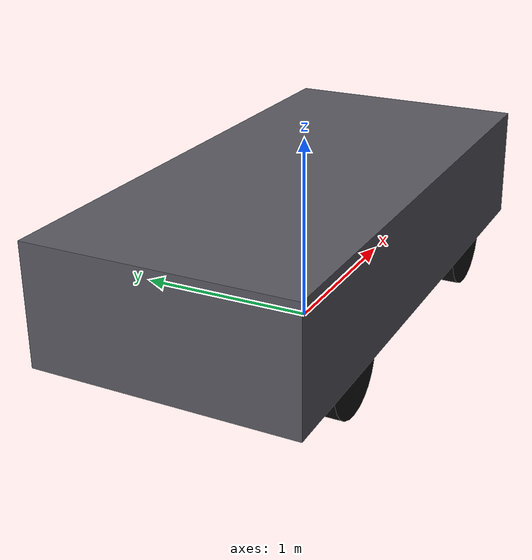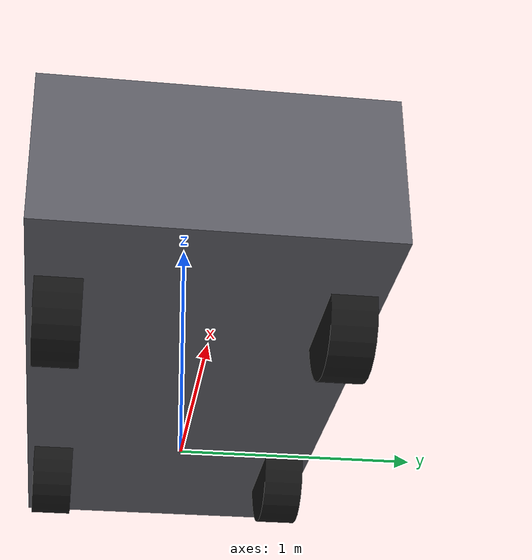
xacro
<?xml version="1.0"?>
<robot name="buggy" xmlns:xacro="http://www.ros.org/wiki/xacro">

  <xacro:include filename="$(find buggy_description)/urdf/materials.xacro"/>
  <xacro:include filename="$(find buggy_description)/urdf/buggy.gazebo.xacro"/>
  <xacro:include filename="$(find buggy_description)/urdf/buggy.velodyne.xacro"/>

  <xacro:arg name="lidar_tilt_deg" default="0.0"/>
  <xacro:property name="lidar_tilt_deg" value="$(arg lidar_tilt_deg)"/>

  <xacro:property name="chassis_length" value="2.8194"/>   <!-- 111 in -->
  <xacro:property name="chassis_width"  value="1.3462"/>   <!-- 53 in -->
  <xacro:property name="vehicle_height" value="1.8"/>      <!-- total vehicle height, incl. wheels -->
  <xacro:property name="wheelbase"      value="1.6"/>
  <xacro:property name="max_steer_rad"  value="0.349066"/> <!-- 20 deg -->

  <xacro:property name="wheel_radius"   value="0.23"/>
  <xacro:property name="wheel_width"    value="0.18"/>
  <xacro:property name="track_width"    value="1.10"/>     <!-- left-right wheel center distance -->
  <xacro:property name="chassis_mass"   value="400.0"/>    <!-- kg, placeholder -->
  <xacro:property name="wheel_mass"     value="15.0"/>     <!-- kg, placeholder -->

  <xacro:property name="chassis_body_top_abs" value="0.85"/>

  <!-- Derived -->
  <xacro:property name="chassis_box_height" value="${chassis_body_top_abs - wheel_radius}"/>
  <xacro:property name="half_wheelbase" value="${wheelbase / 2.0}"/>
  <xacro:property name="half_track" value="${track_width / 2.0}"/>

  <!-- ============================================================
       Base / chassis
       ============================================================ -->
  <link name="base_footprint"/>

  <joint name="base_footprint_joint" type="fixed">
    <parent link="base_footprint"/>
    <child link="base_link"/>
    <origin xyz="0 0 ${wheel_radius}" rpy="0 0 0"/>
  </joint>

  <link name="base_link">
    <visual>
      <origin xyz="0 0 ${chassis_box_height / 2.0}" rpy="0 0 0"/>
      <geometry>
        <box size="${chassis_length} ${chassis_width} ${chassis_box_height}"/>
      </geometry>
      <material name="chassis_grey"/>
    </visual>
    <collision>
      <origin xyz="0 0 ${chassis_box_height / 2.0}" rpy="0 0 0"/>
      <geometry>
        <box size="${chassis_length} ${chassis_width} ${chassis_box_height}"/>
      </geometry>
    </collision>
    <inertial>
      <origin xyz="0 0 ${chassis_box_height / 2.0}" rpy="0 0 0"/>
      <mass value="${chassis_mass}"/>
      <inertia
        ixx="${(1.0/12.0) * chassis_mass * (chassis_width*chassis_width + chassis_box_height*chassis_box_height)}"
        iyy="${(1.0/12.0) * chassis_mass * (chassis_length*chassis_length + chassis_box_height*chassis_box_height)}"
        izz="${(1.0/12.0) * chassis_mass * (chassis_length*chassis_length + chassis_width*chassis_width)}"
        ixy="0" ixz="0" iyz="0"/>
    </inertial>
  </link>

  <xacro:macro name="wheel_inertial">
    <inertial>
      <mass value="${wheel_mass}"/>
      <inertia
        ixx="${(1.0/12.0) * wheel_mass * (3*wheel_radius*wheel_radius + wheel_width*wheel_width)}"
        iyy="${(1.0/2.0) * wheel_mass * wheel_radius*wheel_radius}"
        izz="${(1.0/12.0) * wheel_mass * (3*wheel_radius*wheel_radius + wheel_width*wheel_width)}"
        ixy="0" ixz="0" iyz="0"/>
    </inertial>
  </xacro:macro>

  <xacro:macro name="wheel_link" params="name">
    <link name="${name}_wheel_link">
      <visual>
        <origin xyz="0 0 0" rpy="1.5708 0 0"/>
        <geometry>
          <cylinder radius="${wheel_radius}" length="${wheel_width}"/>
        </geometry>
        <material name="wheel_black"/>
      </visual>
      <collision>
        <origin xyz="0 0 0" rpy="1.5708 0 0"/>
        <geometry>
          <cylinder radius="${wheel_radius}" length="${wheel_width}"/>
        </geometry>
      </collision>
      <xacro:wheel_inertial/>
    </link>
  </xacro:macro>

  <!-- Rear wheels: drive only, no steering -->
  <xacro:macro name="rear_wheel" params="name y_offset">
    <xacro:wheel_link name="${name}"/>
    <joint name="${name}_wheel_joint" type="continuous">
      <parent link="base_link"/>
      <child link="${name}_wheel_link"/>
      <origin xyz="${-half_wheelbase} ${y_offset} 0" rpy="0 0 0"/>
      <axis xyz="0 1 0"/>
    </joint>
  </xacro:macro>

  <!-- Front wheels: steering knuckle (revolute, +/- max_steer_rad) then drive wheel -->
  <xacro:macro name="front_wheel" params="name y_offset">
    <link name="${name}_steer_link">
      <visual>
        <geometry><sphere radius="0.03"/></geometry>
        <material name="steer_hub_dark"/>
      </visual>
      <inertial>
        <mass value="1.0"/>
        <inertia ixx="0.001" iyy="0.001" izz="0.001" ixy="0" ixz="0" iyz="0"/>
      </inertial>
    </link>
    <joint name="${name}_steer_joint" type="revolute">
      <parent link="base_link"/>
      <child link="${name}_steer_link"/>
      <origin xyz="${half_wheelbase} ${y_offset} 0" rpy="0 0 0"/>
      <axis xyz="0 0 1"/>
      <limit lower="${-max_steer_rad}" upper="${max_steer_rad}" effort="100" velocity="3.0"/>
    </joint>

    <xacro:wheel_link name="${name}"/>
    <joint name="${name}_wheel_joint" type="continuous">
      <parent link="${name}_steer_link"/>
      <child link="${name}_wheel_link"/>
      <origin xyz="0 0 0" rpy="0 0 0"/>
      <axis xyz="0 1 0"/>
    </joint>
  </xacro:macro>

  <xacro:front_wheel name="front_left"  y_offset="${half_track}"/>
  <xacro:front_wheel name="front_right" y_offset="${-half_track}"/>
  <xacro:rear_wheel  name="rear_left"   y_offset="${half_track}"/>
  <xacro:rear_wheel  name="rear_right"  y_offset="${-half_track}"/>

  <link name="lidar_mount_link"/>
  <joint name="lidar_mount_joint" type="fixed">
    <parent link="base_link"/>
    <child link="lidar_mount_link"/>
    <origin xyz="${-half_wheelbase + 1.73} 0 ${1.00 - wheel_radius}" rpy="0 ${lidar_tilt_deg * pi / 180.0} 0"/>
  </joint>

  <link name="gps_mount_link"/>
  <joint name="gps_mount_joint" type="fixed">
    <parent link="base_link"/>
    <child link="gps_mount_link"/>
    <origin xyz="0 0 ${chassis_box_height}" rpy="0 0 0"/>
  </joint>

  <link name="imu_mount_link"/>
  <joint name="imu_mount_joint" type="fixed">
    <parent link="base_link"/>
    <child link="imu_mount_link"/>
    <origin xyz="0 0 0" rpy="0 0 0"/>
  </joint>

  <!-- Included last: references max_steer_rad, which must already be defined above -->
  <xacro:include filename="$(find buggy_description)/urdf/buggy.ros2_control.xacro"/>

</robot>

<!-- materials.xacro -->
<robot xmlns:xacro="http://www.ros.org/wiki/xacro">

  <material name="chassis_grey">
    <color rgba="0.35 0.35 0.38 1.0"/>
  </material>

  <material name="wheel_black">
    <color rgba="0.08 0.08 0.08 1.0"/>
  </material>

  <material name="steer_hub_dark">
    <color rgba="0.15 0.15 0.15 1.0"/>
  </material>

</robot>
